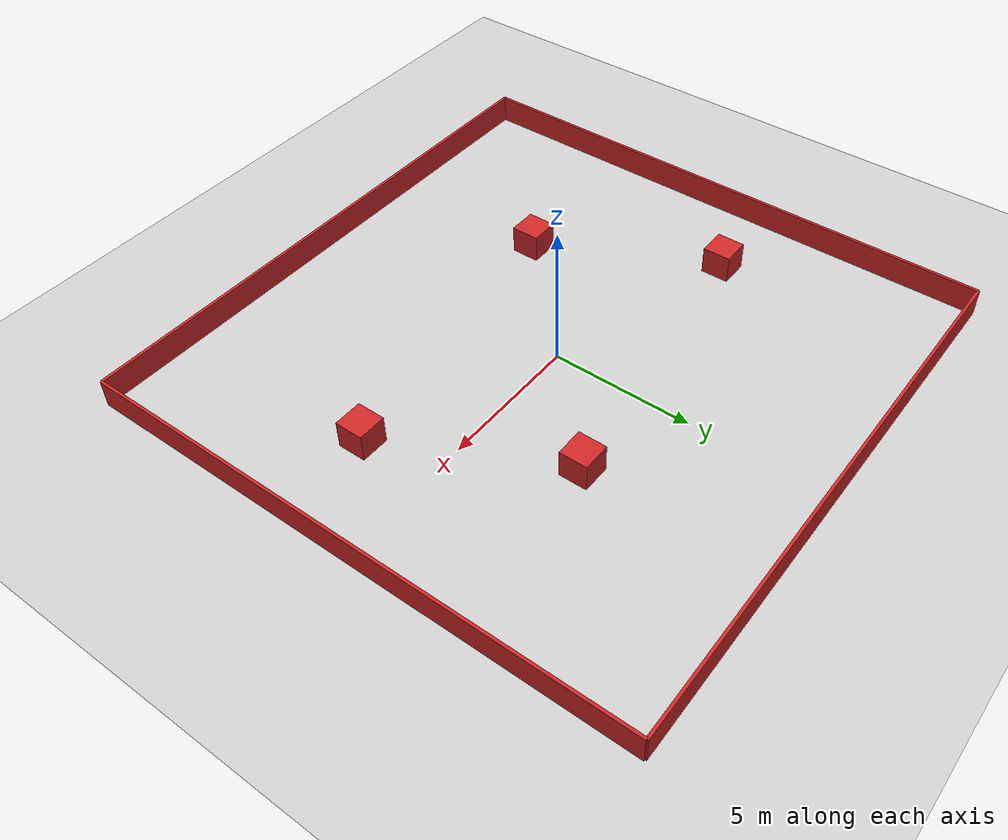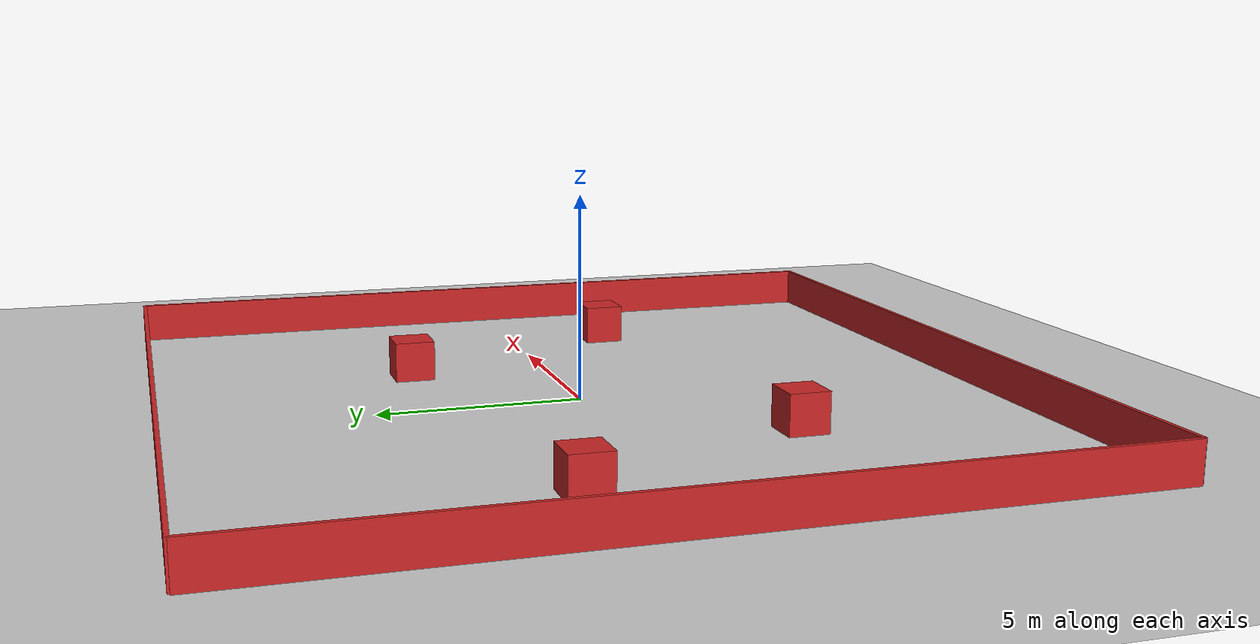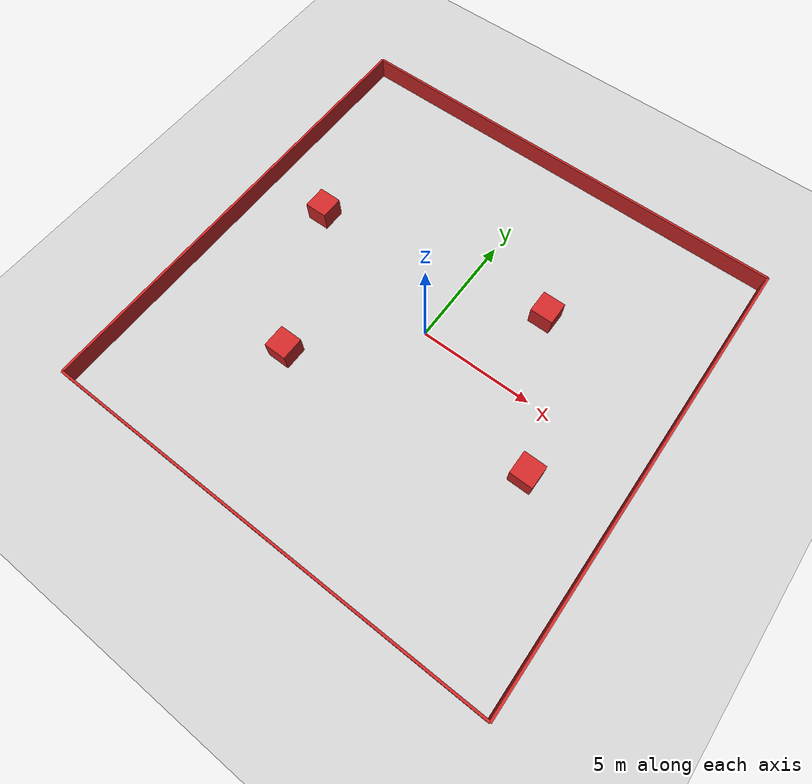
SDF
<sdf version="1.6">
 <world name="default">
  <light name="sun" type="directional">
   <pose>0 0 10 0 -0 0</pose>
   <diffuse>0.8 0.8 0.8 1</diffuse>
   <specular>0.1 0.1 0.1 1</specular>
   <attenuation>
    <range>1000</range>
    <constant>0.9</constant>
    <linear>0.01</linear>
    <quadratic>0.001</quadratic>
   </attenuation>
   <direction>-0.5 0.5 -1</direction>
  </light>
  <gravity>0 0 -9.8</gravity>
  <magnetic_field>6e-06 2.3e-05 -4.2e-05</magnetic_field>
  <atmosphere type="adiabatic"/>
  <physics name="default_physics" default="0" type="ode">
   <max_step_size>0.001</max_step_size>
   <real_time_factor>1</real_time_factor>
   <real_time_update_rate>1000</real_time_update_rate>
  </physics>
  <scene><ambient>0.4 0.4 0.4 1</ambient><background>0.7 0.7 0.7 1</background><shadows>1</shadows></scene>
  <spherical_coordinates>
   <surface_model>EARTH_WGS84</surface_model>
   <latitude_deg>0</latitude_deg>
   <longitude_deg>0</longitude_deg>
   <elevation>0</elevation>
   <heading_deg>0</heading_deg>
  </spherical_coordinates>
  <model name="wall1">
   <static>1</static>
   <link name="w1">
    <pose>0 10 0.5 0 0 0</pose>
    <visual name="w1_visual">
     <geometry><box><size>20 0.1 1</size></box></geometry>
     <material>
      <script><uri>file://media/materials/scripts/gazebo.material</uri><name>Gazebo/Red</name></script>
     </material>
    </visual>
    <collision name="w1_collision"><geometry><box><size>20 0.1 1</size></box></geometry></collision>
   </link>
  </model>
  <model name="wall2">
   <static>1</static>
   <link name="w2">
    <pose>10 0 0.5 0 0 1.57079</pose>
    <visual name="w2_visual">
     <geometry><box><size>20 0.1 1</size></box></geometry>
     <material>
      <script><uri>file://media/materials/scripts/gazebo.material</uri><name>Gazebo/Red</name></script>
     </material>
    </visual>
    <collision name="w2_collision"><geometry><box><size>20 0.1 1</size></box></geometry></collision>
   </link>
  </model>
  <model name="wall3">
   <static>1</static>
   <link name="w3">
    <pose>0 -10 0.5 0 0 0</pose>
    <visual name="w3_visual">
     <geometry><box><size>20 0.1 1</size></box></geometry>
     <material>
      <script><uri>file://media/materials/scripts/gazebo.material</uri><name>Gazebo/Red</name></script>
     </material>
    </visual>
    <collision name="w3_collision"><geometry><box><size>20 0.1 1</size></box></geometry></collision>
   </link>
  </model>
  <model name="wall4">
   <static>1</static>
   <link name="w4">
    <pose>-10 0 0.5 0 0 1.57079</pose>
    <visual name="w4_visual">
     <geometry><box><size>20 0.1 1</size></box></geometry>
     <material>
      <script><uri>file://media/materials/scripts/gazebo.material</uri><name>Gazebo/Red</name></script>
     </material>
    </visual>
    <collision name="w4_collision"><geometry><box><size>20 0.1 1</size></box></geometry></collision>
   </link>
  </model>
  <model name="o1">
   <static>1</static>
   <link name="o1">
    <pose>-7 2 0.5 0 0 1.57079</pose>
    <visual name="o1_visual">
     <geometry><box><size>1 1 1</size></box></geometry>
     <material>
      <script><uri>file://media/materials/scripts/gazebo.material</uri><name>Gazebo/Red</name></script>
     </material>
    </visual>
    <collision name="o1_collision"><geometry><box><size>1 1 1</size></box></geometry></collision>
   </link>
  </model>
  <model name="o2">
   <static>1</static>
   <link name="o2">
    <pose>-4 -4 0.5 0 0 1.57079</pose>
    <visual name="o2_visual">
     <geometry><box><size>1 1 1</size></box></geometry>
     <material>
      <script><uri>file://media/materials/scripts/gazebo.material</uri><name>Gazebo/Red</name></script>
     </material>
    </visual>
    <collision name="o2_collision"><geometry><box><size>1 1 1</size></box></geometry></collision>
   </link>
  </model>
  <model name="o3">
   <static>1</static>
   <link name="o3">
    <pose>6.5 -2.5 0.5 0 0 1.57079</pose>
    <visual name="o3_visual">
     <geometry><box><size>1 1 1</size></box></geometry>
     <material>
      <script><uri>file://media/materials/scripts/gazebo.material</uri><name>Gazebo/Red</name></script>
     </material>
    </visual>
    <collision name="o3_collision"><geometry><box><size>1 1 1</size></box></geometry></collision>
   </link>
  </model>
  <model name="o4">
   <static>1</static>
   <link name="o4">
    <pose>3.5 3.5 0.5 0 0 1.57079</pose>
    <visual name="o4_visual">
     <geometry><box><size>1 1 1</size></box></geometry>
     <material>
      <script><uri>file://media/materials/scripts/gazebo.material</uri><name>Gazebo/Red</name></script>
     </material>
    </visual>
    <collision name="o4_collision"><geometry><box><size>1 1 1</size></box></geometry></collision>
   </link>
  </model>
  <include><uri>model://ground_plane</uri></include>
 </world>
</sdf>
